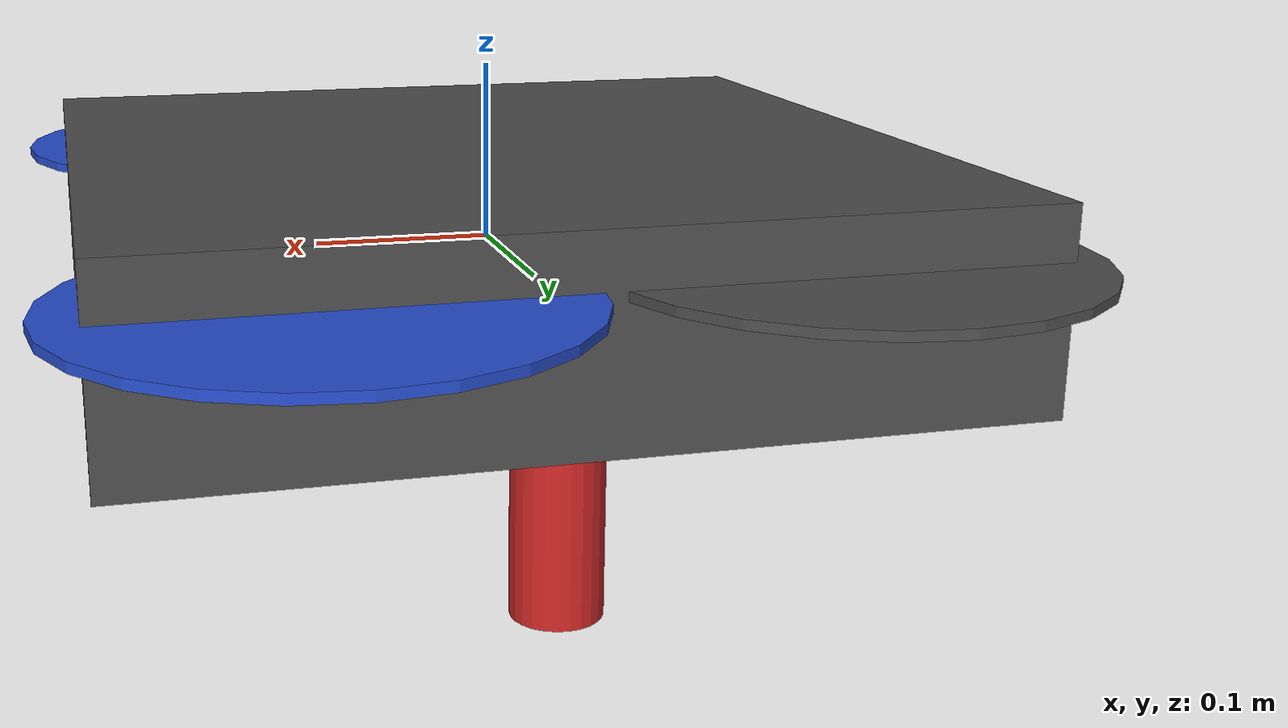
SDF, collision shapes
<?xml version='1.0'?>
<sdf version='1.4'>
    <model name='iris_magnus'>

      <include>
        <uri>model://iris</uri>
      </include>

      <include>
        <uri>model://magnus_wings</uri>
        <pose>0 0 -0.045 0 -0 0</pose>
      </include>

      <joint name="magnus_fixation_joint" type="fixed">
        <child>magnus_wings::base_link</child>
        <parent>iris::base_link</parent>
        <axis>
          <xyz>0 0 0</xyz>
          <limit>
            <upper>0</upper>
            <lower>0</lower>
          </limit>
        </axis>
      </joint>

    </model>
</sdf>

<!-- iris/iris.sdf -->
<sdf version='1.6'>
  <model name='iris'>
    <link name='base_link'>
      <pose frame=''>0 0 0 0 -0 0</pose>
      <inertial>
        <pose frame=''>0 0 0 0 -0 0</pose>
        <mass>1.5</mass>
        <inertia>
          <ixx>0.029125</ixx>
          <ixy>0</ixy>
          <ixz>0</ixz>
          <iyy>0.029125</iyy>
          <iyz>0</iyz>
          <izz>0.055225</izz>
        </inertia>
      </inertial>
      <collision name='base_link_inertia_collision'>
        <pose frame=''>0 0 0 0 -0 0</pose>
        <geometry>
          <box>
            <size>0.47 0.47 0.11</size>
          </box>
        </geometry>
        <surface>
          <contact>
            <ode>
              <min_depth>0.001</min_depth>
              <max_vel>0</max_vel>
            </ode>
          </contact>
          <friction>
            <ode/>
          </friction>
        </surface>
      </collision>
      <visual name='base_link_inertia_visual'>
        <pose frame=''>0 0 0 0 -0 0</pose>
        <geometry>
          <mesh>
            <scale>1 1 1</scale>
            <uri>model://rotors_description/meshes/iris.stl</uri>
          </mesh>
        </geometry>
        <material>
          <script>
            <name>Gazebo/DarkGrey</name>
            <uri>file://media/materials/scripts/gazebo.material</uri>
          </script>
        </material>
      </visual>
      <gravity>1</gravity>
      <velocity_decay/>
    </link>
    <link name='/imu_link'>
      <pose frame=''>0 0 0 0 -0 0</pose>
      <inertial>
        <pose frame=''>0 0 0 0 -0 0</pose>
        <mass>0.015</mass>
        <inertia>
          <ixx>1e-05</ixx>
          <ixy>0</ixy>
          <ixz>0</ixz>
          <iyy>1e-05</iyy>
          <iyz>0</iyz>
          <izz>1e-05</izz>
        </inertia>
      </inertial>
    </link>
    <joint name='/imu_joint' type='revolute'>
      <child>/imu_link</child>
      <parent>base_link</parent>
      <axis>
        <xyz>1 0 0</xyz>
        <limit>
          <lower>0</lower>
          <upper>0</upper>
          <effort>0</effort>
          <velocity>0</velocity>
        </limit>
        <dynamics>
          <spring_reference>0</spring_reference>
          <spring_stiffness>0</spring_stiffness>
        </dynamics>
        <use_parent_model_frame>1</use_parent_model_frame>
      </axis>
    </joint>
    <link name='rotor_0'>
      <pose frame=''>0.13 -0.22 0.023 0 -0 0</pose>
      <inertial>
        <pose frame=''>0 0 0 0 -0 0</pose>
        <mass>0.005</mass>
        <inertia>
          <ixx>9.75e-07</ixx>
          <ixy>0</ixy>
          <ixz>0</ixz>
          <iyy>0.000273104</iyy>
          <iyz>0</iyz>
          <izz>0.000274004</izz>
        </inertia>
      </inertial>
      <collision name='rotor_0_collision'>
        <pose frame=''>0 0 0 0 -0 0</pose>
        <geometry>
          <cylinder>
            <length>0.005</length>
            <radius>0.128</radius>
          </cylinder>
        </geometry>
        <surface>
          <contact>
            <ode/>
          </contact>
          <friction>
            <ode/>
          </friction>
        </surface>
      </collision>
      <visual name='rotor_0_visual'>
        <pose frame=''>0 0 0 0 -0 0</pose>
        <geometry>
          <mesh>
            <scale>1 1 1</scale>
            <uri>model://rotors_description/meshes/iris_prop_ccw.dae</uri>
          </mesh>
        </geometry>
        <material>
          <script>
            <name>Gazebo/Blue</name>
            <uri>file://media/materials/scripts/gazebo.material</uri>
          </script>
        </material>
      </visual>
      <gravity>1</gravity>
      <velocity_decay/>
    </link>
    <joint name='rotor_0_joint' type='revolute'>
      <child>rotor_0</child>
      <parent>base_link</parent>
      <axis>
        <xyz>0 0 1</xyz>
        <limit>
          <lower>-1e+16</lower>
          <upper>1e+16</upper>
        </limit>
        <dynamics>
          <spring_reference>0</spring_reference>
          <spring_stiffness>0</spring_stiffness>
        </dynamics>
        <use_parent_model_frame>1</use_parent_model_frame>
      </axis>
    </joint>
    <link name='rotor_1'>
      <pose frame=''>-0.13 0.2 0.023 0 -0 0</pose>
      <inertial>
        <pose frame=''>0 0 0 0 -0 0</pose>
        <mass>0.005</mass>
        <inertia>
          <ixx>9.75e-07</ixx>
          <ixy>0</ixy>
          <ixz>0</ixz>
          <iyy>0.000273104</iyy>
          <iyz>0</iyz>
          <izz>0.000274004</izz>
        </inertia>
      </inertial>
      <collision name='rotor_1_collision'>
        <pose frame=''>0 0 0 0 -0 0</pose>
        <geometry>
          <cylinder>
            <length>0.005</length>
            <radius>0.128</radius>
          </cylinder>
        </geometry>
        <surface>
          <contact>
            <ode/>
          </contact>
          <friction>
            <ode/>
          </friction>
        </surface>
      </collision>
      <visual name='rotor_1_visual'>
        <pose frame=''>0 0 0 0 -0 0</pose>
        <geometry>
          <mesh>
            <scale>1 1 1</scale>
            <uri>model://rotors_description/meshes/iris_prop_ccw.dae</uri>
          </mesh>
        </geometry>
        <material>
          <script>
            <name>Gazebo/DarkGrey</name>
            <uri>file://media/materials/scripts/gazebo.material</uri>
          </script>
        </material>
      </visual>
      <gravity>1</gravity>
      <velocity_decay/>
    </link>
    <joint name='rotor_1_joint' type='revolute'>
      <child>rotor_1</child>
      <parent>base_link</parent>
      <axis>
        <xyz>0 0 1</xyz>
        <limit>
          <lower>-1e+16</lower>
          <upper>1e+16</upper>
        </limit>
        <dynamics>
          <spring_reference>0</spring_reference>
          <spring_stiffness>0</spring_stiffness>
        </dynamics>
        <use_parent_model_frame>1</use_parent_model_frame>
      </axis>
    </joint>
    <link name='rotor_2'>
      <pose frame=''>0.13 0.22 0.023 0 -0 0</pose>
      <inertial>
        <pose frame=''>0 0 0 0 -0 0</pose>
        <mass>0.005</mass>
        <inertia>
          <ixx>9.75e-07</ixx>
          <ixy>0</ixy>
          <ixz>0</ixz>
          <iyy>0.000273104</iyy>
          <iyz>0</iyz>
          <izz>0.000274004</izz>
        </inertia>
      </inertial>
      <collision name='rotor_2_collision'>
        <pose frame=''>0 0 0 0 -0 0</pose>
        <geometry>
          <cylinder>
            <length>0.005</length>
            <radius>0.128</radius>
          </cylinder>
        </geometry>
        <surface>
          <contact>
            <ode/>
          </contact>
          <friction>
            <ode/>
          </friction>
        </surface>
      </collision>
      <visual name='rotor_2_visual'>
        <pose frame=''>0 0 0 0 -0 0</pose>
        <geometry>
          <mesh>
            <scale>1 1 1</scale>
            <uri>model://rotors_description/meshes/iris_prop_cw.dae</uri>
          </mesh>
        </geometry>
        <material>
          <script>
            <name>Gazebo/Blue</name>
            <uri>file://media/materials/scripts/gazebo.material</uri>
          </script>
        </material>
      </visual>
      <gravity>1</gravity>
      <velocity_decay/>
    </link>
    <joint name='rotor_2_joint' type='revolute'>
      <child>rotor_2</child>
      <parent>base_link</parent>
      <axis>
        <xyz>0 0 1</xyz>
        <limit>
          <lower>-1e+16</lower>
          <upper>1e+16</upper>
        </limit>
        <dynamics>
          <spring_reference>0</spring_reference>
          <spring_stiffness>0</spring_stiffness>
        </dynamics>
        <use_parent_model_frame>1</use_parent_model_frame>
      </axis>
    </joint>
    <link name='rotor_3'>
      <pose frame=''>-0.13 -0.2 0.023 0 -0 0</pose>
      <inertial>
        <pose frame=''>0 0 0 0 -0 0</pose>
        <mass>0.005</mass>
        <inertia>
          <ixx>9.75e-07</ixx>
          <ixy>0</ixy>
          <ixz>0</ixz>
          <iyy>0.000273104</iyy>
          <iyz>0</iyz>
          <izz>0.000274004</izz>
        </inertia>
      </inertial>
      <collision name='rotor_3_collision'>
        <pose frame=''>0 0 0 0 -0 0</pose>
        <geometry>
          <cylinder>
            <length>0.005</length>
            <radius>0.128</radius>
          </cylinder>
        </geometry>
        <surface>
          <contact>
            <ode/>
          </contact>
          <friction>
            <ode/>
          </friction>
        </surface>
      </collision>
      <visual name='rotor_3_visual'>
        <pose frame=''>0 0 0 0 -0 0</pose>
        <geometry>
          <mesh>
            <scale>1 1 1</scale>
            <uri>model://rotors_description/meshes/iris_prop_cw.dae</uri>
          </mesh>
        </geometry>
        <material>
          <script>
            <name>Gazebo/DarkGrey</name>
            <uri>file://media/materials/scripts/gazebo.material</uri>
          </script>
        </material>
      </visual>
      <gravity>1</gravity>
      <velocity_decay/>
    </link>
    <joint name='rotor_3_joint' type='revolute'>
      <child>rotor_3</child>
      <parent>base_link</parent>
      <axis>
        <xyz>0 0 1</xyz>
        <limit>
          <lower>-1e+16</lower>
          <upper>1e+16</upper>
        </limit>
        <dynamics>
          <spring_reference>0</spring_reference>
          <spring_stiffness>0</spring_stiffness>
        </dynamics>
        <use_parent_model_frame>1</use_parent_model_frame>
      </axis>
    </joint>
    <plugin name='rosbag' filename='libgazebo_multirotor_base_plugin.so'>
      <robotNamespace/>
      <linkName>base_link</linkName>
      <rotorVelocitySlowdownSim>10</rotorVelocitySlowdownSim>
    </plugin>
    <plugin name='front_right_motor_model' filename='libgazebo_motor_model.so'>
      <robotNamespace/>
      <jointName>rotor_0_joint</jointName>
      <linkName>rotor_0</linkName>
      <turningDirection>ccw</turningDirection>
      <timeConstantUp>0.0125</timeConstantUp>
      <timeConstantDown>0.025</timeConstantDown>
      <maxRotVelocity>1100</maxRotVelocity>
      <motorConstant>8.54858e-06</motorConstant>
      <momentConstant>0.06</momentConstant>
      <commandSubTopic>/gazebo/command/motor_speed</commandSubTopic>
      <motorNumber>0</motorNumber>
      <rotorDragCoefficient>0.000806428</rotorDragCoefficient>
      <rollingMomentCoefficient>1e-06</rollingMomentCoefficient>
      <motorSpeedPubTopic>/motor_speed/0</motorSpeedPubTopic>
      <rotorVelocitySlowdownSim>10</rotorVelocitySlowdownSim>
    </plugin>
    <plugin name='back_left_motor_model' filename='libgazebo_motor_model.so'>
      <robotNamespace/>
      <jointName>rotor_1_joint</jointName>
      <linkName>rotor_1</linkName>
      <turningDirection>ccw</turningDirection>
      <timeConstantUp>0.0125</timeConstantUp>
      <timeConstantDown>0.025</timeConstantDown>
      <maxRotVelocity>1100</maxRotVelocity>
      <motorConstant>8.54858e-06</motorConstant>
      <momentConstant>0.06</momentConstant>
      <commandSubTopic>/gazebo/command/motor_speed</commandSubTopic>
      <motorNumber>1</motorNumber>
      <rotorDragCoefficient>0.000806428</rotorDragCoefficient>
      <rollingMomentCoefficient>1e-06</rollingMomentCoefficient>
      <motorSpeedPubTopic>/motor_speed/1</motorSpeedPubTopic>
      <rotorVelocitySlowdownSim>10</rotorVelocitySlowdownSim>
    </plugin>
    <plugin name='front_left_motor_model' filename='libgazebo_motor_model.so'>
      <robotNamespace/>
      <jointName>rotor_2_joint</jointName>
      <linkName>rotor_2</linkName>
      <turningDirection>cw</turningDirection>
      <timeConstantUp>0.0125</timeConstantUp>
      <timeConstantDown>0.025</timeConstantDown>
      <maxRotVelocity>1100</maxRotVelocity>
      <motorConstant>8.54858e-06</motorConstant>
      <momentConstant>0.06</momentConstant>
      <commandSubTopic>/gazebo/command/motor_speed</commandSubTopic>
      <motorNumber>2</motorNumber>
      <rotorDragCoefficient>0.000806428</rotorDragCoefficient>
      <rollingMomentCoefficient>1e-06</rollingMomentCoefficient>
      <motorSpeedPubTopic>/motor_speed/2</motorSpeedPubTopic>
      <rotorVelocitySlowdownSim>10</rotorVelocitySlowdownSim>
    </plugin>
    <plugin name='back_right_motor_model' filename='libgazebo_motor_model.so'>
      <robotNamespace/>
      <jointName>rotor_3_joint</jointName>
      <linkName>rotor_3</linkName>
      <turningDirection>cw</turningDirection>
      <timeConstantUp>0.0125</timeConstantUp>
      <timeConstantDown>0.025</timeConstantDown>
      <maxRotVelocity>1100</maxRotVelocity>
      <motorConstant>8.54858e-06</motorConstant>
      <momentConstant>0.06</momentConstant>
      <commandSubTopic>/gazebo/command/motor_speed</commandSubTopic>
      <motorNumber>3</motorNumber>
      <rotorDragCoefficient>0.000806428</rotorDragCoefficient>
      <rollingMomentCoefficient>1e-06</rollingMomentCoefficient>
      <motorSpeedPubTopic>/motor_speed/3</motorSpeedPubTopic>
      <rotorVelocitySlowdownSim>10</rotorVelocitySlowdownSim>
    </plugin>
    <plugin name='gps_plugin' filename='libgazebo_gps_plugin.so'>
      <robotNamespace/>
      <gpsNoise>1</gpsNoise>
    </plugin>
    <plugin name='magnetometer_plugin' filename='libgazebo_magnetometer_plugin.so'>
      <robotNamespace/>
      <pubRate>20</pubRate>
      <noiseDensity>0.0004</noiseDensity>
      <randomWalk>6.4e-06</randomWalk>
      <biasCorrelationTime>600</biasCorrelationTime>
      <magTopic>/mag</magTopic>
    </plugin>
    <plugin name='barometer_plugin' filename='libgazebo_barometer_plugin.so'>
      <robotNamespace/>
      <pubRate>10</pubRate>
      <baroTopic>/baro</baroTopic>
    </plugin>
    <plugin name='mavlink_interface' filename='libgazebo_mavlink_interface.so'>
      <robotNamespace/>
      <imuSubTopic>/imu</imuSubTopic>
      <gpsSubTopic>/gps</gpsSubTopic>
      <magSubTopic>/mag</magSubTopic>
      <baroSubTopic>/baro</baroSubTopic>
      <mavlink_addr>INADDR_ANY</mavlink_addr>
      <mavlink_udp_port>14560</mavlink_udp_port>
      <mavlink_tcp_port>4560</mavlink_tcp_port>
      <serialEnabled>0</serialEnabled>
      <serialDevice>/dev/ttyACM0</serialDevice>
      <baudRate>921600</baudRate>
      <qgc_addr>INADDR_ANY</qgc_addr>
      <qgc_udp_port>14550</qgc_udp_port>
      <sdk_addr>INADDR_ANY</sdk_addr>
      <sdk_udp_port>14540</sdk_udp_port>
      <hil_mode>0</hil_mode>
      <hil_state_level>0</hil_state_level>
      <vehicle_is_tailsitter>0</vehicle_is_tailsitter>
      <send_vision_estimation>0</send_vision_estimation>
      <send_odometry>0</send_odometry>
      <enable_lockstep>1</enable_lockstep>
      <use_tcp>1</use_tcp>
      <motorSpeedCommandPubTopic>/gazebo/command/motor_speed</motorSpeedCommandPubTopic>
      <control_channels>
        <channel name='rotor1'>
          <input_index>0</input_index>
          <input_offset>0</input_offset>
          <input_scaling>1000</input_scaling>
          <zero_position_disarmed>0</zero_position_disarmed>
          <zero_position_armed>100</zero_position_armed>
          <joint_control_type>velocity</joint_control_type>
        </channel>
        <channel name='rotor2'>
          <input_index>1</input_index>
          <input_offset>0</input_offset>
          <input_scaling>1000</input_scaling>
          <zero_position_disarmed>0</zero_position_disarmed>
          <zero_position_armed>100</zero_position_armed>
          <joint_control_type>velocity</joint_control_type>
        </channel>
        <channel name='rotor3'>
          <input_index>2</input_index>
          <input_offset>0</input_offset>
          <input_scaling>1000</input_scaling>
          <zero_position_disarmed>0</zero_position_disarmed>
          <zero_position_armed>100</zero_position_armed>
          <joint_control_type>velocity</joint_control_type>
        </channel>
        <channel name='rotor4'>
          <input_index>3</input_index>
          <input_offset>0</input_offset>
          <input_scaling>1000</input_scaling>
          <zero_position_disarmed>0</zero_position_disarmed>
          <zero_position_armed>100</zero_position_armed>
          <joint_control_type>velocity</joint_control_type>
        </channel>
        <channel name='rotor5'>
          <input_index>4</input_index>
          <input_offset>1</input_offset>
          <input_scaling>324.6</input_scaling>
          <zero_position_disarmed>0</zero_position_disarmed>
          <zero_position_armed>0</zero_position_armed>
          <joint_control_type>velocity</joint_control_type>
          <joint_control_pid>
            <p>0.1</p>
            <i>0</i>
            <d>0</d>
            <iMax>0.0</iMax>
            <iMin>0.0</iMin>
            <cmdMax>2</cmdMax>
            <cmdMin>-2</cmdMin>
          </joint_control_pid>
          <joint_name>zephyr_delta_wing::propeller_joint</joint_name>
        </channel>
        <channel name='rotor6'>
          <input_index>5</input_index>
          <input_offset>0</input_offset>
          <input_scaling>0.524</input_scaling>
          <zero_position_disarmed>0</zero_position_disarmed>
          <zero_position_armed>0</zero_position_armed>
          <joint_control_type>position</joint_control_type>
          <joint_name>zephyr_delta_wing::flap_left_joint</joint_name>
          <joint_control_pid>
            <p>10.0</p>
            <i>0</i>
            <d>0</d>
            <iMax>0</iMax>
            <iMin>0</iMin>
            <cmdMax>20</cmdMax>
            <cmdMin>-20</cmdMin>
          </joint_control_pid>
        </channel>
        <channel name='rotor7'>
          <input_index>6</input_index>
          <input_offset>0</input_offset>
          <input_scaling>0.524</input_scaling>
          <zero_position_disarmed>0</zero_position_disarmed>
          <zero_position_armed>0</zero_position_armed>
          <joint_control_type>position</joint_control_type>
          <joint_name>zephyr_delta_wing::flap_right_joint</joint_name>
          <joint_control_pid>
            <p>10.0</p>
            <i>0</i>
            <d>0</d>
            <iMax>0</iMax>
            <iMin>0</iMin>
            <cmdMax>20</cmdMax>
            <cmdMin>-20</cmdMin>
          </joint_control_pid>
        </channel>
        <channel name='rotor8'>
          <input_index>7</input_index>
          <input_offset>0</input_offset>
          <input_scaling>0.524</input_scaling>
          <zero_position_disarmed>0</zero_position_disarmed>
          <zero_position_armed>0</zero_position_armed>
          <joint_control_type>position</joint_control_type>
        </channel>
      </control_channels>
    </plugin>
    <static>0</static>
    <plugin name='rotors_gazebo_imu_plugin' filename='libgazebo_imu_plugin.so'>
      <robotNamespace/>
      <linkName>/imu_link</linkName>
      <imuTopic>/imu</imuTopic>
      <gyroscopeNoiseDensity>0.0003394</gyroscopeNoiseDensity>
      <gyroscopeRandomWalk>3.8785e-05</gyroscopeRandomWalk>
      <gyroscopeBiasCorrelationTime>1000.0</gyroscopeBiasCorrelationTime>
      <gyroscopeTurnOnBiasSigma>0.0087</gyroscopeTurnOnBiasSigma>
      <accelerometerNoiseDensity>0.004</accelerometerNoiseDensity>
      <accelerometerRandomWalk>0.006</accelerometerRandomWalk>
      <accelerometerBiasCorrelationTime>300.0</accelerometerBiasCorrelationTime>
      <accelerometerTurnOnBiasSigma>0.196</accelerometerTurnOnBiasSigma>
    </plugin>
  </model>
</sdf>

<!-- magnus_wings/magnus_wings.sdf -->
<sdf version='1.6'>
    <model name='magnus_wings'>

        <link name="base_link">
            <pose frame=''>0 0 0 0 -0 0</pose>
            <inertial>
                <pose frame=''>0 0 0 0 -0 0</pose>
                <mass>0.0</mass>
                <inertia>
                    <ixx>0</ixx>
                    <ixy>0</ixy>
                    <ixz>0</ixz>
                    <iyy>0</iyy>
                    <iyz>0</iyz>
                    <izz>0</izz>
                </inertia>
            </inertial>
            <collision name='base_link_collision'>
                <pose frame=''>0 0 0 0 -0 0</pose>
                <geometry>
                <box>
                    <size>0.2 0.3 0.01</size>
                </box>
                </geometry>
                <surface>
                <contact>
                    <ode>
                    <min_depth>0.001</min_depth>
                    <max_vel>0</max_vel>
                    </ode>
                </contact>
                <friction>
                    <ode/>
                </friction>
                </surface>
            </collision>
            <visual name='base_link_visual'>
                <pose frame=''>0 0 0 0 -0 0</pose>
                <geometry>
                    <box>
                        <size>0.3 0.2 0.05</size>
                    </box>
                </geometry>
                <material>
                <script>
                    <name>Gazebo/DarkGrey</name>
                    <uri>file://media/materials/scripts/gazebo.material</uri>
                </script>
                </material>
            </visual>
            <gravity>1</gravity>
            <velocity_decay/>
        </link>

        <link name="left_wing">
            <parent>base_link</parent>
            <pose frame=''>0 0.15 -0.05 1.5708 0 0 0</pose>
            <inertial>
                <pose frame=''>0 0 0 0 -0 0</pose>
                <mass>0.06</mass>
                <inertia>
                    <ixx>0.000121875</ixx>
                    <ixy>0</ixy>
                    <ixz>0</ixz>
                    <iyy>1.875e-05</iyy>
                    <iyz>0</iyz>
                    <izz>0.000121875</izz>
                </inertia>
            </inertial>
            <collision name="left_wing_collision">
                <geometry>
                <cylinder>
                    <radius>0.025</radius>
                    <length>0.15</length>
                </cylinder>
                </geometry>
            </collision>
            <visual name="left_wing_visual">
                <pose frame=''>0 0 0 0 -0 0</pose>
                <geometry>
                <cylinder>
                    <radius>0.025</radius>
                    <length>0.15</length>
                </cylinder>
                </geometry>
                <material>
                <script>
                    <name>Gazebo/Red</name>
                    <uri>file://media/materials/scripts/gazebo.material</uri>
                </script>
                </material>
            </visual>
            <gravity>1</gravity>
            <velocity_decay/>
        </link>

        <joint name='left_wing_joint' type='revolute'>
            <child>left_wing</child>
            <parent>base_link</parent>
            <axis>
                <xyz>0 0 -1</xyz>
                <limit>
                <lower>-1e+16</lower>
                <upper>1e+16</upper>
                </limit>
                <dynamics>
                <damping>0</damping>
                <friction>0</friction>
                <spring_reference>0</spring_reference>
                <spring_stiffness>0</spring_stiffness>
                </dynamics>
                <use_parent_model_frame>1</use_parent_model_frame>
            </axis>
        </joint>

        <link name="right_wing">
            <parent>base_link</parent>
            <pose frame=''>0 -0.15 -0.05 1.5708 0 0 0</pose>
            <inertial>
                <pose frame=''>0 0 0 0 -0 0</pose>
                <mass>0.06</mass>
                <inertia>
                <ixx>0.000121875</ixx>
                <ixy>0</ixy>
                <ixz>0</ixz>
                <iyy>1.875e-05</iyy>
                <iyz>0</iyz>
                <izz>0.000121875</izz>
                </inertia>
            </inertial>
            <collision name="right_wing_collision">
                <geometry>
                <cylinder>
                    <radius>0.025</radius>
                    <length>0.15</length>
                </cylinder>
                </geometry>
            </collision>
            <visual name="right_wing_visual">
                <pose frame=''>0 0 0 0 -0 0</pose>
                <geometry>
                <cylinder>
                    <radius>0.025</radius>
                    <length>0.15</length>
                </cylinder>
                </geometry>
                <material>
                <script>
                    <name>Gazebo/Red</name>
                    <uri>file://media/materials/scripts/gazebo.material</uri>
                </script>
                </material>
            </visual>
            <gravity>1</gravity>
            <velocity_decay/>
        </link>

        <joint name='right_wing_joint' type='revolute'>
            <child>right_wing</child>
            <parent>base_link</parent>
            <axis>
                <xyz>0 0 1</xyz>
                <limit>
                <lower>-1e+16</lower>
                <upper>1e+16</upper>
                </limit>
                <dynamics>
                <damping>0</damping>
                <friction>0</friction>
                <spring_reference>0</spring_reference>
                <spring_stiffness>0</spring_stiffness>
                </dynamics>
                <use_parent_model_frame>1</use_parent_model_frame>
            </axis>
        </joint>

    </model>
</sdf>
